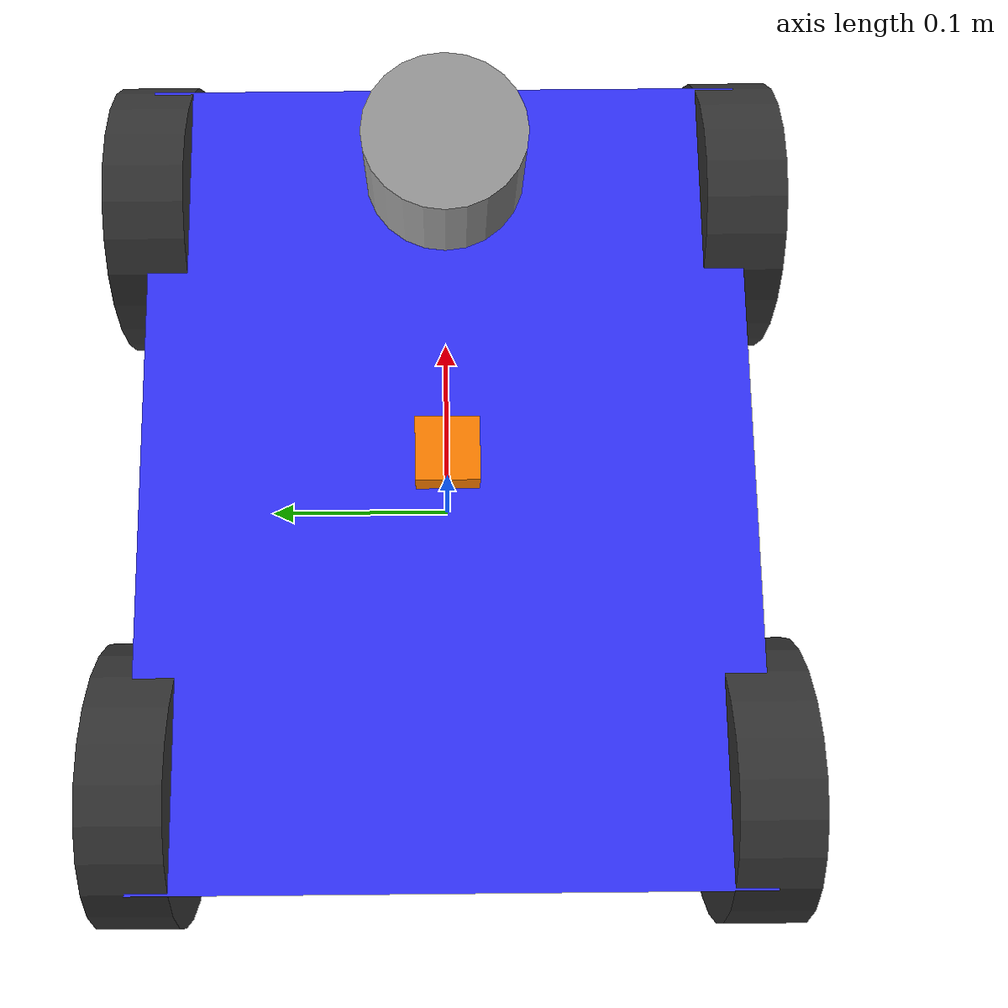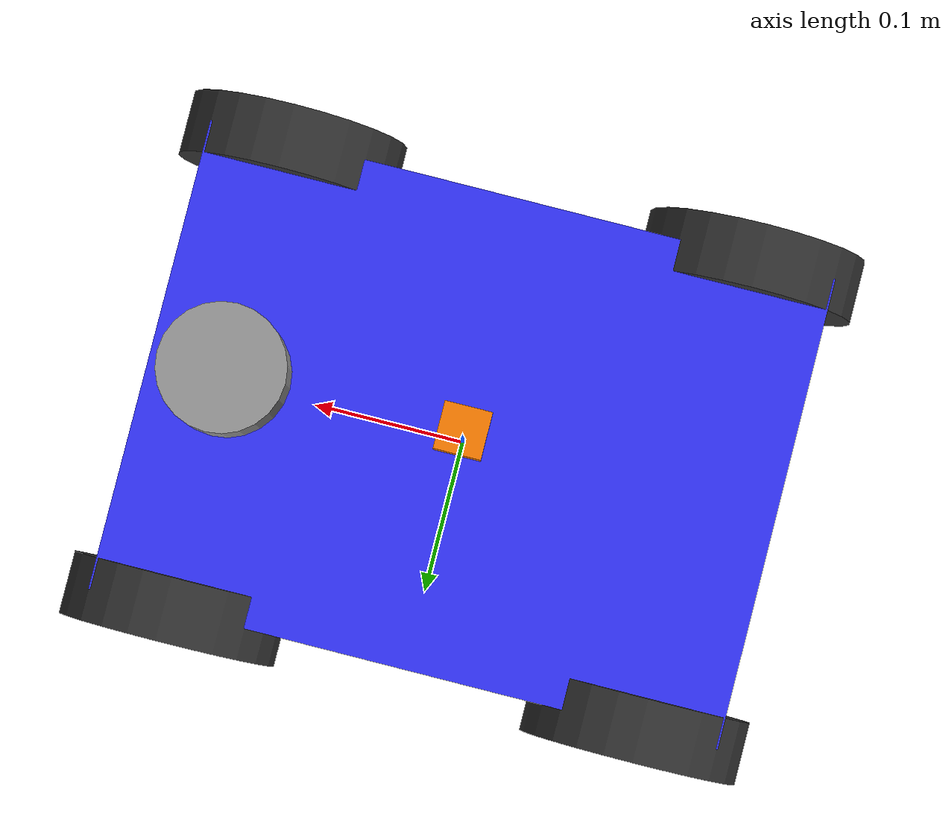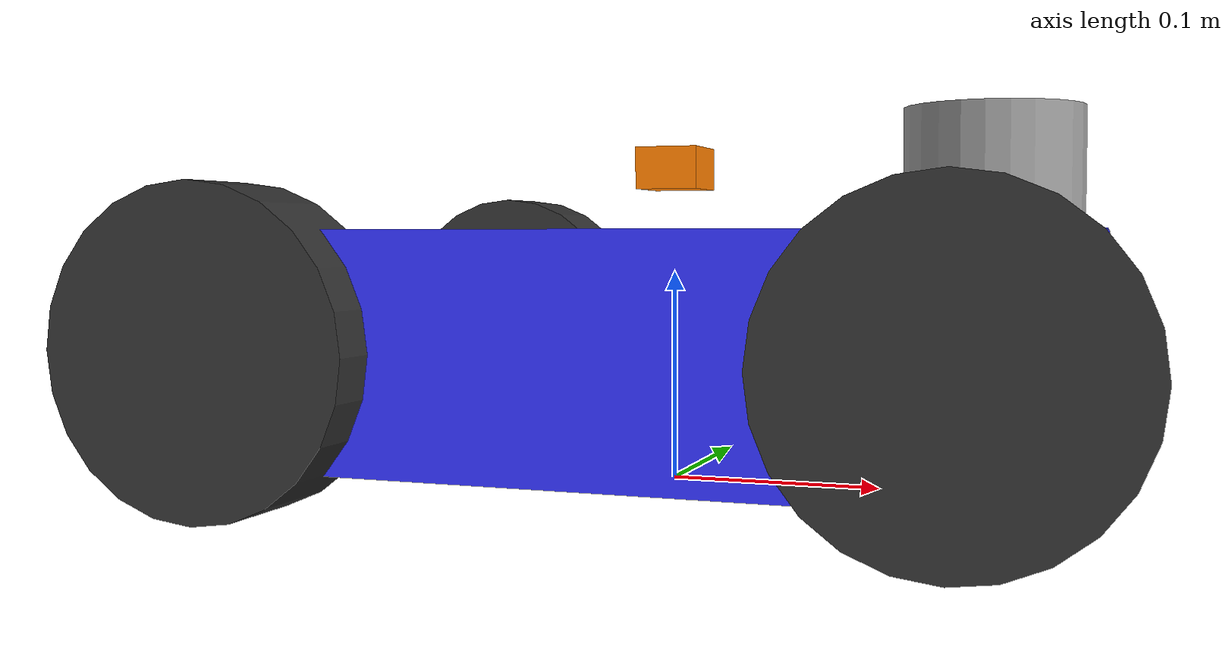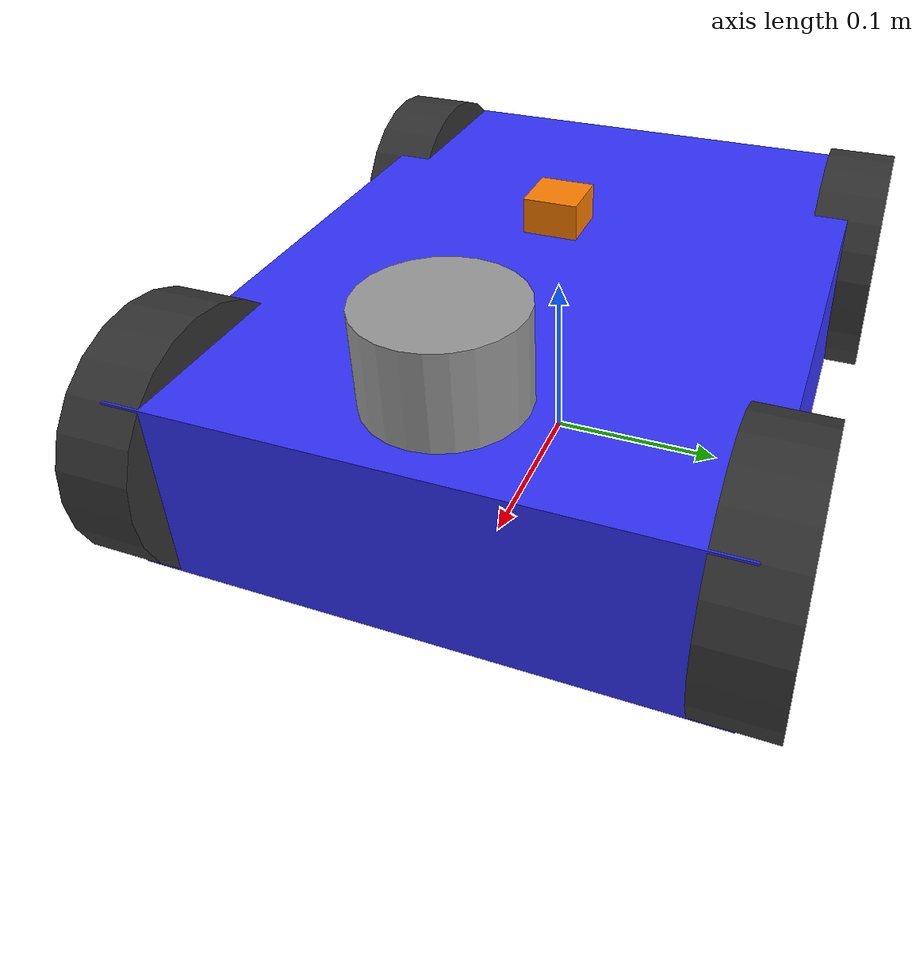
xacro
<?xml version="1.0"?>
<robot name="murphy" xmlns:xacro="http://www.ros.org/wiki/xacro">
  <ros2_control name="MurphySystem" type="system">
  <hardware>
    <plugin>gz_ros2_control/GazeboSimSystem</plugin>
  </hardware>

  <joint name="front_left_wheel_joint">
    <command_interface name="velocity"/>
    <state_interface name="position"/>
    <state_interface name="velocity"/>
  </joint>

  <joint name="rear_left_wheel_joint">
    <command_interface name="velocity"/>
    <state_interface name="position"/>
    <state_interface name="velocity"/>
  </joint>

  <joint name="front_right_wheel_joint">
    <command_interface name="velocity"/>
    <state_interface name="position"/>
    <state_interface name="velocity"/>
  </joint>

  <joint name="rear_right_wheel_joint">
    <command_interface name="velocity"/>
    <state_interface name="position"/>
    <state_interface name="velocity"/>
  </joint>
</ros2_control>

  <xacro:property name="pi" value="3.14159265359"/>
  <xacro:property name="wheel_radius" value="0.07"/>
  <xacro:property name="base_height" value="0.1"/>

  <link name="base_link">
    <visual>
      <geometry>
        <box size="0.4 0.3 ${base_height}"/>
      </geometry>
      <origin xyz="0 0 ${wheel_radius}"/>
      <material name="blue">
        <color rgba="0.2 0.2 1.0 1.0"/>
      </material>
    </visual>
    <collision>
      <geometry>
        <box size="0.4 0.3 ${base_height}"/>
      </geometry>
      <origin xyz="0 0 ${wheel_radius}"/>
    </collision>
    <inertial>
      <mass value="8.0"/>
      <origin xyz="0 0 ${wheel_radius}"/>
      <inertia ixx="0.2" iyy="0.2" izz="0.2"
               ixy="0" ixz="0" iyz="0"/>
    </inertial>
  </link>

  <link name="lidar_link">
    <visual>
      <geometry>
        <cylinder radius="0.04" length="0.05"/>
      </geometry>
      <origin xyz="0 0 0"/>
      <material name="gray">
        <color rgba="0.6 0.6 0.6 1.0"/>
      </material>
    </visual>
  </link>

  <joint name="lidar_joint" type="fixed">
    <parent link="base_link"/>
    <child link="lidar_link"/>
    <origin xyz="0.15 0 0.15"/>
  </joint>

  <link name="imu_link">
    <visual>
      <geometry>
        <box size="0.03 0.03 0.02"/>
      </geometry>
      <material name="orange">
        <color rgba="1 0.5 0 1"/>
      </material>
    </visual>

  </link>

  <joint name="imu_joint" type="fixed">
    <parent link="base_link"/>
    <child link="imu_link"/>
    <origin xyz="0 0 0.15"/>
  </joint>

  <xacro:macro name="wheel" params="name x y">

    <link name="${name}">
      <visual>
        <geometry>
          <cylinder radius="${wheel_radius}" length="0.04"/>
        </geometry>
        <origin rpy="${pi/2} 0 0"/>
        <material name="black">
          <color rgba="0.2 0.2 0.2 1.0"/>
        </material>
      </visual>

      <collision>
        <geometry>
          <cylinder radius="${wheel_radius}" length="0.04"/>
        </geometry>
        <origin rpy="${pi/2} 0 0"/>
      </collision>

      <inertial>
        <mass value="1.0"/>
        <origin xyz="0 0 0"/>
        <inertia ixx="${0.01}" iyy="${0.01}" izz="${0.005}"
                 ixy="0" ixz="0" iyz="0"/>
      </inertial>
    </link>

    <joint name="${name}_joint" type="continuous">
      <parent link="base_link"/>
      <child link="${name}"/>
      <origin xyz="${x} ${y} ${wheel_radius}" rpy="0 0 0"/>
      <axis xyz="0 1 0"/>
    </joint>

  </xacro:macro>

  <xacro:wheel name="front_left_wheel"  x="0.15"  y="0.15"/>
  <xacro:wheel name="front_right_wheel" x="0.15"  y="-0.15"/>
  <xacro:wheel name="rear_left_wheel"   x="-0.15" y="0.15"/>
  <xacro:wheel name="rear_right_wheel"  x="-0.15" y="-0.15"/>

<gazebo reference="lidar_link">
  <sensor name="lidar" type="gpu_lidar">
    <update_rate>10</update_rate>
    <topic>scan</topic>
    <lidar>
      <scan>
        <horizontal>
          <samples>360</samples>
          <min_angle>-3.14</min_angle>
          <max_angle>3.14</max_angle>
        </horizontal>
      </scan>
      <range>
        <min>0.1</min>
        <max>10.0</max>
      </range>
    </lidar>
  </sensor>
</gazebo>

<gazebo reference="imu_link">
  <sensor name="imu_sensor" type="imu">
    <always_on>1</always_on>
    <update_rate>100</update_rate>
    <visualize>true</visualize>
    <topic>imu</topic>
  </sensor>
</gazebo>

<gazebo>
  <plugin filename="libgz_ros2_control-system.so"
          name="gz_ros2_control::GazeboSimROS2ControlPlugin">

    <parameters>$(find murphy_description)/config/controllers.yaml</parameters>

  </plugin>
</gazebo>

</robot>
